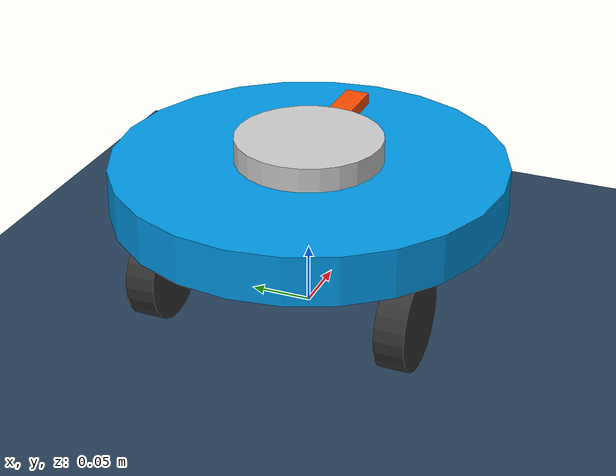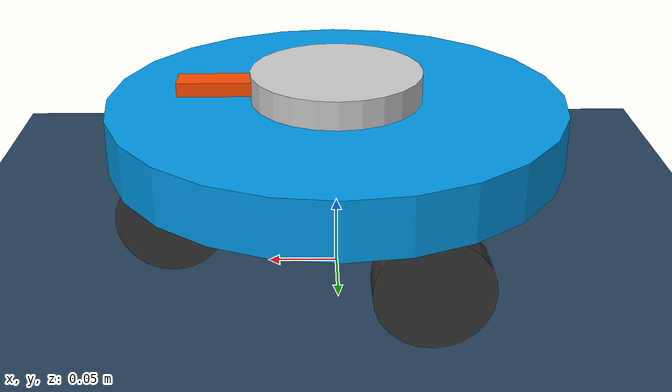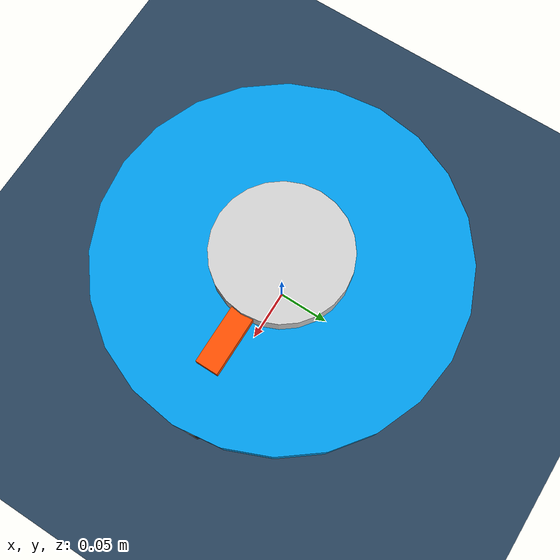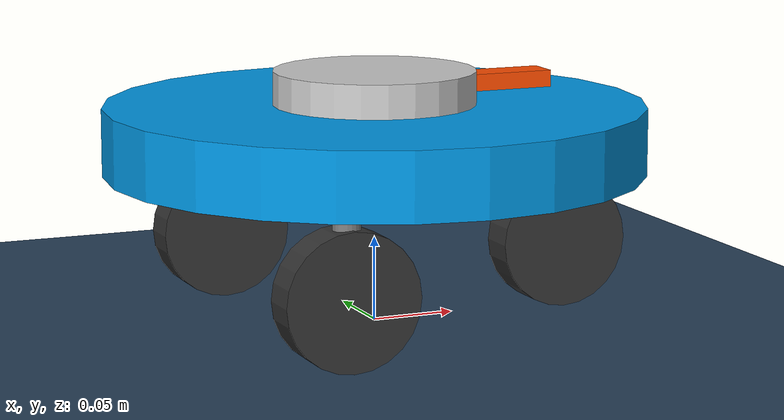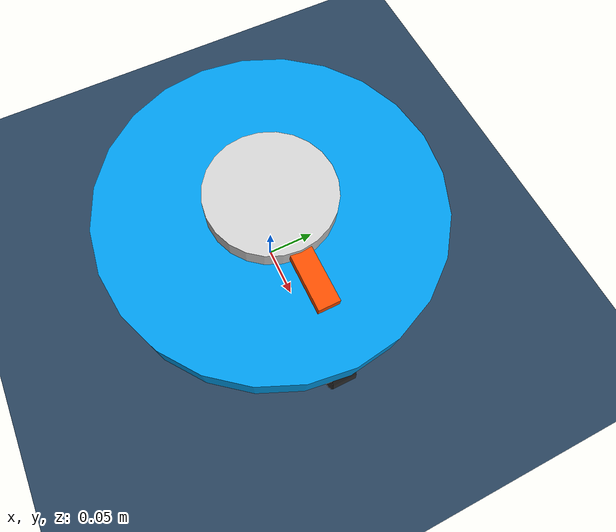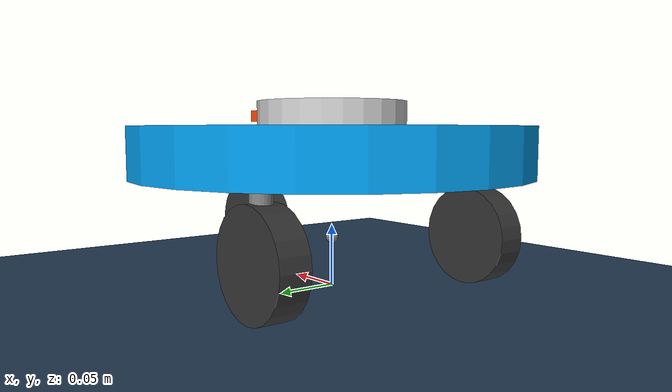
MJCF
<mujoco model="synchronous_drive">
  <statistic center="0 0 0.1" extent="1.2" meansize=".05"/>

  <visual>
    <headlight diffuse="0.6 0.6 0.6" ambient="0.3 0.3 0.3" specular="0 0 0"/>
    <rgba haze="0.15 0.25 0.35 1"/>
    <global azimuth="-20" elevation="-20" ellipsoidinertia="true"/>
  </visual>

  <asset>
    <texture type="skybox" builtin="gradient" rgb1="0.3 0.5 0.7" rgb2="0 0 0" width="512" height="3072"/>
    <texture type="2d" name="groundplane" builtin="checker" mark="edge" rgb1="0.2 0.3 0.4" rgb2="0.1 0.2 0.3"
      markrgb="0.8 0.8 0.8" width="300" height="300"/>
    <material name="groundplane" texture="groundplane" texuniform="true" texrepeat="5 5" reflectance="0.2"/>
  </asset>

  <!-- implicitfast keeps the stiff velocity servos on the light wheels stable. -->
  <option gravity="0 0 -9.81" timestep="0.002" integrator="implicitfast"/>

  <!-- Only the wheels touch the ground; the rest of the robot is visual. -->
  <default>
    <geom contype="0" conaffinity="0"/>
    <default class="steer">
      <joint type="hinge" axis="0 0 1" damping="0.1" armature="0.001"/>
      <geom type="capsule" fromto="0 0 0 0 0 0.05" size="0.008" rgba="0.5 0.5 0.5 1" mass="0.02"/>
    </default>
    <default class="wheel">
      <geom type="cylinder" size="0.04 0.012" zaxis="0 1 0" contype="1" conaffinity="1" rgba="0.2 0.2 0.2 1"
        mass="0.1"/>
      <joint type="hinge" axis="0 1 0" damping="0.01" armature="0.0005"/>
    </default>
  </default>

  <worldbody>
    <light pos="0 0 1.5" dir="0 0 -1" directional="true"/>
    <geom name="floor" size="0 0 0.05" type="plane" material="groundplane" contype="1" conaffinity="1"/>

    <body name="chassis" pos="0 0 0.04">
      <freejoint/>
      <geom name="base" type="cylinder" pos="0 0 0.07" size="0.16 0.02" rgba="0 0.6 0.9 1" mass="3"/>
      <site name="center" pos="0 0 0"/>

      <body name="turret" pos="0 0 0.09">
        <joint name="turret" class="steer"/>
        <geom name="turret" type="cylinder" pos="0 0 0.01" size="0.06 0.01" rgba="0.8 0.8 0.8 1" mass="0.1"/>
        <geom name="heading" type="box" pos="0.08 0 0.01" size="0.03 0.01 0.005" rgba="1 0.3 0 1" mass="0"/>
      </body>

      <!-- Three wheel modules on a circle of radius 0.12 m, 120 degrees apart. -->
      <body name="module_1" pos="0.12 0 0">
        <joint name="steer_1" class="steer"/>
        <geom name="leg_1" class="steer"/>
        <body name="wheel_1">
          <joint name="wheel_1" class="wheel"/>
          <geom name="wheel_1" class="wheel"/>
        </body>
      </body>
      <body name="module_2" pos="-0.06 0.10392 0">
        <joint name="steer_2" class="steer"/>
        <geom name="leg_2" class="steer"/>
        <body name="wheel_2">
          <joint name="wheel_2" class="wheel"/>
          <geom name="wheel_2" class="wheel"/>
        </body>
      </body>
      <body name="module_3" pos="-0.06 -0.10392 0">
        <joint name="steer_3" class="steer"/>
        <geom name="leg_3" class="steer"/>
        <body name="wheel_3">
          <joint name="wheel_3" class="wheel"/>
          <geom name="wheel_3" class="wheel"/>
        </body>
      </body>
    </body>
  </worldbody>

  <!-- The steering belt and the drive belt: joint1 = joint2 (the default polycoef is "0 1 0 0 0"). -->
  <equality>
    <joint joint1="steer_2" joint2="steer_1"/>
    <joint joint1="steer_3" joint2="steer_1"/>
    <joint joint1="turret" joint2="steer_1"/>
    <joint joint1="wheel_2" joint2="wheel_1"/>
    <joint joint1="wheel_3" joint2="wheel_1"/>
  </equality>

  <sensor>
    <jointpos name="steering_pos" joint="steer_1"/>
    <jointvel name="wheel_vel" joint="wheel_1"/>
    <framepos name="chassis_pos" objtype="site" objname="center"/>
    <velocimeter name="chassis_linvel" site="center"/>
    <gyro name="chassis_angvel" site="center"/>
  </sensor>

  <actuator>
    <!-- Steering angle command in rad (the joint is unlimited), wheel speed command in rad/s. -->
    <position name="steering" joint="steer_1" kp="20" dampratio="1" ctrlrange="-3.1416 3.1416"/>
    <velocity name="drive" joint="wheel_1" kv="1" ctrlrange="-20 20" forcerange="-5 5"/>
  </actuator>
</mujoco>
